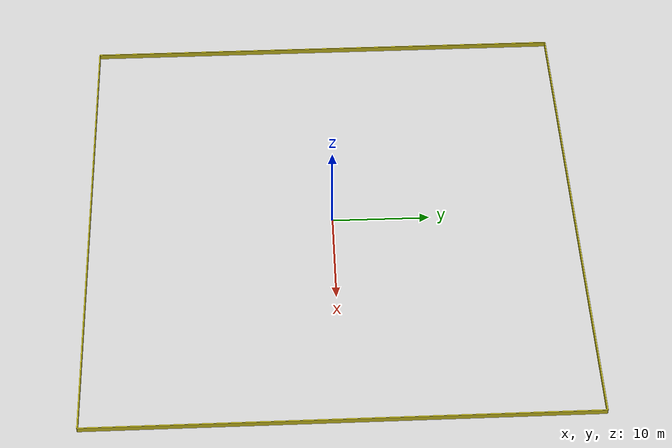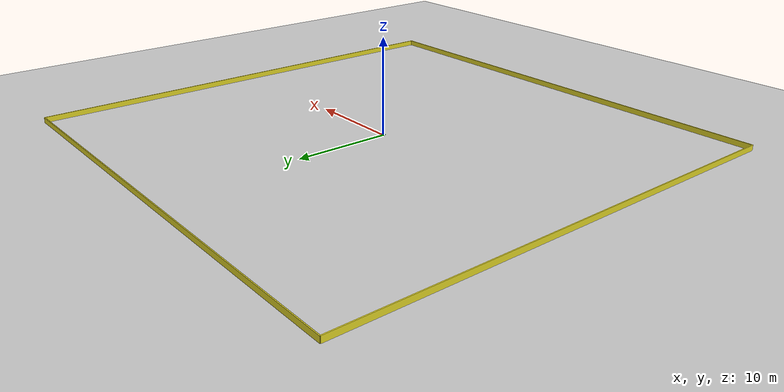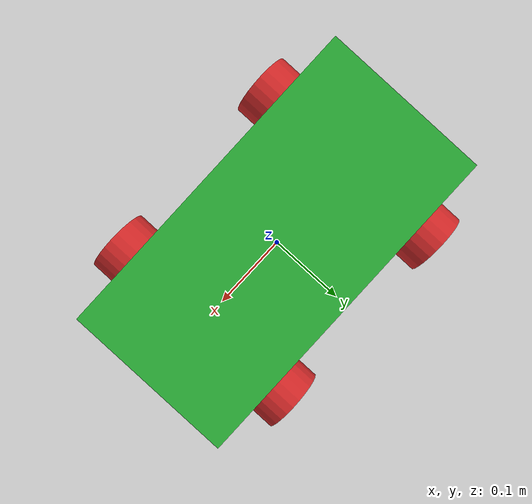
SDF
<?xml version="1.0" ?>
<sdf version="1.3">
  <world name="default">
    <physics type="ode">
      <gravity>0 0 -1</gravity>
      <ode>
        <solver>
          <type>quick</type>
          <dt>0.001</dt>
          <iters>40</iters>
          <sor>1.0</sor>
        </solver>
        <constraints>
          <cfm>0.0</cfm>
          <erp>0.2</erp>
          <contact_max_correcting_vel>100.0</contact_max_correcting_vel>
          <contact_surface_layer>0.0</contact_surface_layer>
        </constraints>
      </ode>
    </physics>
    <!-- A global light source -->
    <include>
      <uri>model://sun</uri>
    </include>
    <!-- A ground plane -->
    <include>
      <uri>model://ground_plane</uri>
    </include>
    <include>
      <uri>file://models/pen</uri>
      <pose>0 0 0 0 0 0</pose>
    </include>
    <include>
      <uri>file://models/car</uri>
      <pose>0 0 0 0 0 0</pose>
    </include>
  </world>
</sdf>

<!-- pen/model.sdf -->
<sdf version="1.4">
  <model name="pen">
    <static>true</static>
    <link name="wall1">
      <pose>25.0 0 0 0 0 0</pose>
      <collision name="wall1_col">
        <pose>0 0 0 0 0 0</pose>
        <geometry>
          <box>
            <size>0.1 50.0 1.0</size>
          </box>
        </geometry>
      </collision>
      <visual name="wall1_vis">
        <pose>0 0 0 0 0 0</pose>
        <geometry>
          <box>
            <size>0.1 50.0 1.0</size>
          </box>
        </geometry>
        <material>
          <script>
            <uri>file://media/materials/scripts/gazebo.material</uri>
            <name>Gazebo/Yellow</name>
          </script>
        </material>
      </visual>
    </link>
    <link name="wall2">
      <pose>-25.0 0 0 0 0 0</pose>
      <collision name="wall2_col">
        <pose>0 0 0 0 0 0</pose>
        <geometry>
          <box>
            <size>0.1 50.0 1.0</size>
          </box>
        </geometry>
      </collision>
      <visual name="wall2_vis">
        <pose>0 0 0 0 0 0</pose>
        <geometry>
          <box>
            <size>0.1 50.0 1.0</size>
          </box>
        </geometry>
        <material>
          <script>
            <uri>file://media/materials/scripts/gazebo.material</uri>
            <name>Gazebo/Yellow</name>
          </script>
        </material>
      </visual>
    </link>
    <link name="wall3">
      <pose>0 25.0 0 0 0 0</pose>
      <collision name="wall3_col">
        <pose>0 0 0 0 0 0</pose>
        <geometry>
          <box>
            <size>50.0 0.1 1.0</size>
          </box>
        </geometry>
      </collision>
      <visual name="wall3_vis">
        <pose>0 0 0 0 0 0</pose>
        <geometry>
          <box>
            <size>50.0 0.1 1.0</size>
          </box>
        </geometry>
        <material>
          <script>
            <uri>file://media/materials/scripts/gazebo.material</uri>
            <name>Gazebo/Yellow</name>
          </script>
        </material>
      </visual>
    </link>
    <link name="wall4">
      <pose>0 -25.0 0 0 0 0</pose>
      <collision name="wall1_col">
        <pose>0 0 0 0 0 0</pose>
        <geometry>
          <box>
            <size>50.0 0.1 1.0</size>
          </box>
        </geometry>
      </collision>
      <visual name="wall1_vis">
        <pose>0 0 0 0 0 0</pose>
        <geometry>
          <box>
            <size>50.0 0.1 1.0</size>
          </box>
        </geometry>
        <material>
          <script>
            <uri>file://media/materials/scripts/gazebo.material</uri>
            <name>Gazebo/Yellow</name>
          </script>
        </material>
      </visual>
    </link>
  </model>
</sdf>

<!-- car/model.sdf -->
<sdf version="1.4">
  <model name="car">
    <link name="body">
      <pose>0 0 0.09 0 0 0</pose>
      <inertial>
        <pose>0 0 0 0 0 0</pose>
        <inertia>
          <ixx>0.41667</ixx>
          <ixy>0</ixy>
          <ixz>0</ixz>
          <iyy>1.41667</iyy>
          <iyz>0</iyz>
          <izz>1.66667</izz>
        </inertia>
        <mass>100.0</mass>
      </inertial>
      <collision name="body_col">
        <pose>0 0 0 0 0 0</pose>
        <geometry>
          <box>
            <size>0.4 0.2 0.1</size>
          </box>
        </geometry>
      </collision>
      <visual name="body_vis">
        <pose>0 0 0 0 0 0</pose>
        <geometry>
          <box>
            <size>0.4 0.2 0.1</size>
          </box>
        </geometry>
        <material>
          <script>
            <uri>file://media/materials/scripts/gazebo.material</uri>
            <name>Gazebo/Green</name>
          </script>
        </material>
      </visual>
    </link>
    <link name="rear_driveshaft">
      <pose>-0.125 0 0.04 0 1.5708 0</pose>
      <inertial>
	<pose>0 0 0 0 0 0</pose>
        <inertia>
          <ixx>0.001</ixx>
          <ixy>0</ixy>
          <ixz>0</ixz>
          <iyy>0.001</iyy>
          <iyz>0</iyz>
          <izz>0.001</izz>
        </inertia>
        <mass>1.0</mass>
      </inertial>
    </link>
    <link name="steering_link">
      <pose>0.125 0 0.04 0 1.5708 0</pose>
      <inertial>
	<pose>0 0 0 0 0 0</pose>
        <inertia>
          <ixx>0.001</ixx>
          <ixy>0</ixy>
          <ixz>0</ixz>
          <iyy>0.001</iyy>
          <iyz>0</iyz>
          <izz>0.001</izz>
        </inertia>
        <mass>1.0</mass>
      </inertial>
    </link>
    <link name="spindle_front_left">
      <pose>0.125 0.12 0.04 1.5708 0 0</pose>
      <inertial>
	<pose>0 0 0 0 0 0</pose>
        <inertia>
          <ixx>0.001</ixx>
          <ixy>0</ixy>
          <ixz>0</ixz>
          <iyy>0.001</iyy>
          <iyz>0</iyz>
          <izz>0.001</izz>
        </inertia>
        <mass>1.0</mass>
      </inertial>
    </link>
    <link name="spindle_front_right">
      <pose>0.125 -0.12 0.04 1.5708 0 0</pose>
      <inertial>
	<pose>0 0 0 0 0 0</pose>
        <inertia>
          <ixx>0.001</ixx>
          <ixy>0</ixy>
          <ixz>0</ixz>
          <iyy>0.001</iyy>
          <iyz>0</iyz>
          <izz>0.001</izz>
        </inertia>
        <mass>1.0</mass>
      </inertial>
    </link>
    <link name="wheel_front_left">
      <pose>0.125 0.12 0.04 1.5708 0 0</pose>
      <inertial>
	<pose>0 0 0 0 0 0</pose>
        <inertia>
          <ixx>0.0008</ixx>
          <ixy>0</ixy>
          <ixz>0</ixz>
          <iyy>0.000533</iyy>
          <iyz>0</iyz>
          <izz>0.000533</izz>
        </inertia>
        <mass>1.0</mass>
      </inertial>
      <collision name="wheel_front_left_col">
        <pose>0 0 0 0 0 0</pose>
        <geometry>
          <cylinder>
            <radius>0.04</radius>
            <length>0.04</length>
          </cylinder>
        </geometry>
      </collision>
      <visual name="wheel_front_left_vis">
        <pose>0 0 0 0 0 0</pose>
        <geometry>
          <cylinder>
            <radius>0.04</radius>
            <length>0.04</length>
          </cylinder>
        </geometry>
        <material>
          <script>
            <uri>file://media/materials/scripts/gazebo.material</uri>
            <name>Gazebo/Red</name>
          </script>
        </material>
      </visual>
    </link>
    <link name="wheel_front_right">
      <pose>0.125 -0.12 0.04 1.5708 0 0</pose>
      <inertial>
	<pose>0 0 0 0 0 0</pose>
        <inertia>
          <ixx>0.0008</ixx>
          <ixy>0</ixy>
          <ixz>0</ixz>
          <iyy>0.000533</iyy>
          <iyz>0</iyz>
          <izz>0.000533</izz>
        </inertia>
        <mass>1.0</mass>
      </inertial>
      <collision name="wheel_front_right_col">
        <pose>0 0 0 0 0 0</pose>
        <geometry>
          <cylinder>
            <radius>0.04</radius>
            <length>0.04</length>
          </cylinder>
        </geometry>
      </collision>
      <visual name="wheel_front_right_vis">
        <pose>0 0 0 0 0 0</pose>
        <geometry>
          <cylinder>
            <radius>0.04</radius>
            <length>0.04</length>
          </cylinder>
        </geometry>
        <material>
          <script>
            <uri>file://media/materials/scripts/gazebo.material</uri>
            <name>Gazebo/Red</name>
          </script>
        </material>
      </visual>
    </link>
    <link name="wheel_rear_left">
      <pose>-0.125 0.12 0.04 1.5708 0 0</pose>
      <inertial>
	<pose>0 0 0 0 0 0</pose>
        <inertia>
          <ixx>0.0008</ixx>
          <ixy>0</ixy>
          <ixz>0</ixz>
          <iyy>0.000533</iyy>
          <iyz>0</iyz>
          <izz>0.000533</izz>
        </inertia>
        <mass>1.0</mass>
      </inertial>
      <collision name="wheel_rear_left_col">
        <pose>0 0 0 0 0 0</pose>
        <geometry>
          <cylinder>
            <radius>0.04</radius>
            <length>0.04</length>
          </cylinder>
        </geometry>
      </collision>
      <visual name="wheel_rear_left_vis">
        <pose>0 0 0 0 0 0</pose>
        <geometry>
          <cylinder>
            <radius>0.04</radius>
            <length>0.04</length>
          </cylinder>
        </geometry>
        <material>
          <script>
            <uri>file://media/materials/scripts/gazebo.material</uri>
            <name>Gazebo/Red</name>
          </script>
        </material>
      </visual>
    </link>
    <link name="wheel_rear_right">
      <pose>-0.125 -0.12 0.04 1.5708 0 0</pose>
      <inertial>
	<pose>0 0 0 0 0 0</pose>
        <inertia>
          <ixx>0.0008</ixx>
          <ixy>0</ixy>
          <ixz>0</ixz>
          <iyy>0.000533</iyy>
          <iyz>0</iyz>
          <izz>0.000533</izz>
        </inertia>
        <mass>1.0</mass>
      </inertial>
      <collision name="wheel_rear_right_col">
        <pose>0 0 0 0 0 0</pose>
        <geometry>
          <cylinder>
            <radius>0.04</radius>
            <length>0.04</length>
          </cylinder>
        </geometry>
      </collision>
      <visual name="wheel_rear_right_vis">
        <pose>0 0 0 0 0 0</pose>
        <geometry>
          <cylinder>
            <radius>0.04</radius>
            <length>0.04</length>
          </cylinder>
        </geometry>
        <material>
          <script>
            <uri>file://media/materials/scripts/gazebo.material</uri>
            <name>Gazebo/Red</name>
          </script>
        </material>
      </visual>
    </link>

    <!-- STEERING JOINTS -->
    <joint name="steering_box" type="revolute">
      <parent>body</parent>
      <child>steering_link</child>
      <axis>
        <dynamics>
          <damping>0.000000</damping>
          <friction>0.000000</friction>
        </dynamics>
        <xyz>1 0 0</xyz>
      </axis>
    </joint>
    <joint name="rear_differential" type="revolute">
      <parent>body</parent>
      <child>rear_driveshaft</child>
      <axis>
        <dynamics>
          <damping>0.000000</damping>
          <friction>0.000000</friction>
        </dynamics>
        <xyz>1 0 0</xyz>
      </axis>
    </joint>
    <joint name="kingpin_front_left" type="revolute">
      <parent>body</parent>
      <child>spindle_front_left</child>
      <axis>
        <dynamics>
          <damping>0.000000</damping>
          <friction>0.000000</friction>
        </dynamics>
        <xyz>0 0 1</xyz>
      </axis>
    </joint>
    <joint name="kingpin_front_right" type="revolute">
      <parent>body</parent>
      <child>spindle_front_right</child>
      <axis>
        <dynamics>
          <damping>0.000000</damping>
          <friction>0.000000</friction>
        </dynamics>
        <xyz>0 0 1</xyz>
      </axis>
    </joint>

    <!-- WHEEL BEARINGS -->
    <joint name="bearing_front_left" type="revolute">
      <parent>spindle_front_left</parent>
      <child>wheel_front_left</child>
      <axis>
        <dynamics>
          <damping>0.000000</damping>
          <friction>0.000000</friction>
        </dynamics>
        <xyz>0 1 0</xyz>
      </axis>
    </joint>
    <joint name="bearing_front_right" type="revolute">
      <parent>spindle_front_right</parent>
      <child>wheel_front_right</child>
      <axis>
        <dynamics>
          <damping>0.000000</damping>
          <friction>0.000000</friction>
        </dynamics>
        <xyz>0 1 0</xyz>
      </axis>
    </joint>
    <joint name="bearing_rear_left" type="revolute">
      <parent>body</parent>
      <child>wheel_rear_left</child>
      <axis>
        <dynamics>
          <damping>0.000000</damping>
          <friction>0.000000</friction>
        </dynamics>
        <xyz>0 1 0</xyz>
      </axis>
    </joint>
    <joint name="bearing_rear_right" type="revolute">
      <parent>body</parent>
      <child>wheel_rear_right</child>
      <axis>
        <dynamics>
          <damping>0.000000</damping>
          <friction>0.000000</friction>
        </dynamics>
        <xyz>0 1 0</xyz>
      </axis>
    </joint>

    <plugin name='car_controller' filename='libcar_controller.so'>
      <!-- Tunable Parameters -->
      <max_speed>1.0</max_speed>
      <max_steering_velocity>0.31416</max_steering_velocity>

      <!-- Ellipse -->
      <!-- Lissajous -->
      <steering_control_kp>10.0</steering_control_kp>
      <steering_control_kd>1.0</steering_control_kd>
      <speed_control_kp>500.0</speed_control_kp>
      <!-- Testing Parameters -->
      <lissajous_ks>0.500</lissajous_ks>
      <lissajous_kd>0.0001</lissajous_kd>
      <lissajous_du_speed>48.00</lissajous_du_speed>
      <lissajous_du_angle>1.425</lissajous_du_angle>
      <!-- Steering Linkage - Tune at own risk - Deactive -->
      <max_steering_angle_deg>30.0</max_steering_angle_deg>
      <kingpin_distance>0.09</kingpin_distance>
      <steering_lever_base_angle_deg>75.0</steering_lever_base_angle_deg>
      <steering_lever_length>0.03</steering_lever_length>
      <tie_rod_length>0.075</tie_rod_length>
      <spindle_lever_length>0.055</spindle_lever_length>
    </plugin>

  </model>
</sdf>
